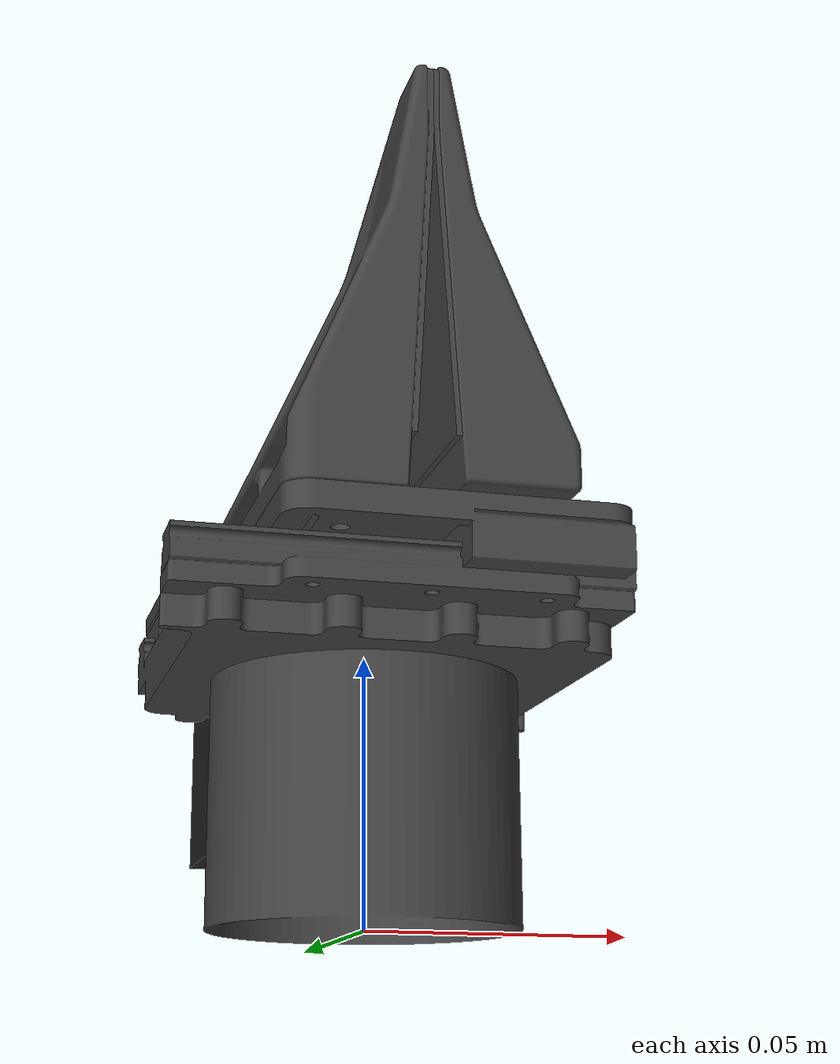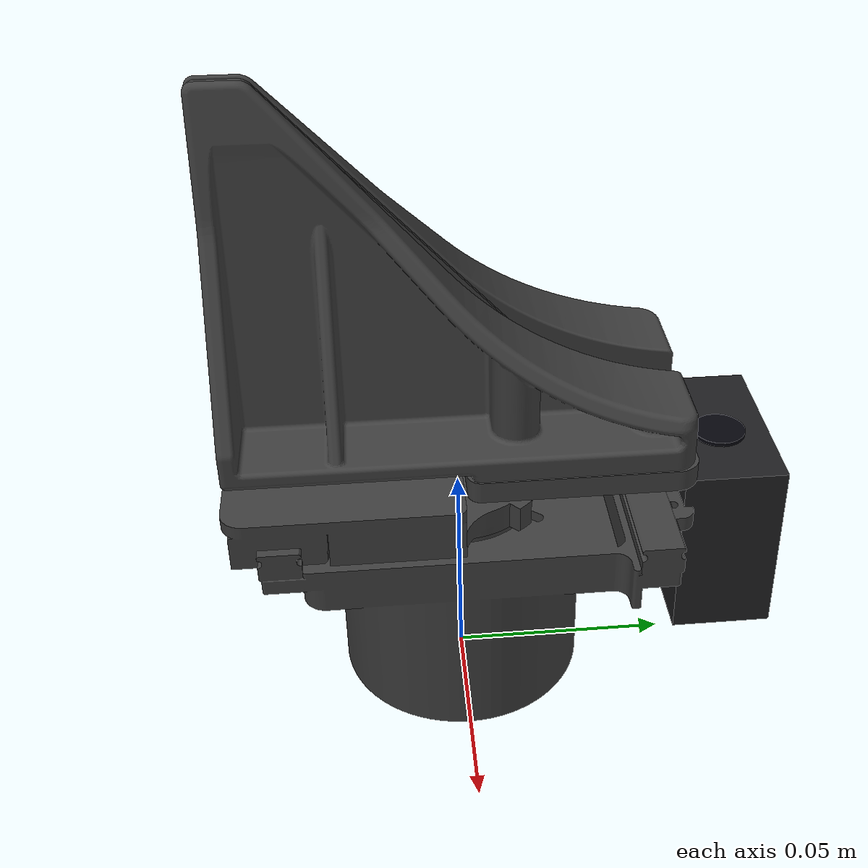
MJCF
<!-- GENERATED by scripts/build_yam_assets.py from teleop_sim/envs/yam_assets.py.
     Do not edit by hand: change the generator and re-run it. -->
<mujoco model="yam_linear">
  <compiler angle="radian" />
  <default>
    <default class="yam_linear_yam">
      <position inheritrange="1" />
      <joint frictionloss="0.1" axis="0 0 1" />
      <default class="yam_linear_dm4340">
        <joint armature="0.032" />
        <position kp="40" kv="2.5" forcerange="-28 28" />
      </default>
      <default class="yam_linear_dm4310">
        <joint armature="0.0018" />
        <position kp="10" kv="1" forcerange="-10 10" />
      </default>
      <default class="yam_linear_visual">
        <geom type="mesh" contype="0" conaffinity="0" density="0" group="2" material="yam_linear_black" />
      </default>
      <default class="yam_linear_collision">
        <geom group="3" type="capsule" />
        <default class="yam_linear_sphere_collision">
          <geom size="0.0006 0 0" type="sphere" rgba="1 0 0 1" />
        </default>
      </default>
      <default class="yam_linear_finger">
        <joint type="slide" armature="0.1" frictionloss="0.1" />
        <position ctrlrange="0.0 0.041" kp="100" kv="10" inheritrange="0" />
      </default>
    </default>
  </default>
  <asset>
    <material name="yam_linear_black" rgba="0.25 0.25 0.25 1" />
    <material name="yam_linear_white" rgba="0.9 0.9 0.9 1" />
    <mesh file="../../i2rt_yam/upstream/assets/model2__12.stl" name="yam_linear_model2__12" />
    <mesh file="../../i2rt_yam/upstream/assets/model2__14.stl" name="yam_linear_model2__14" />
    <mesh file="../../i2rt_yam/upstream/assets/model2__15.stl" name="yam_linear_model2__15" />
    <mesh file="../../i2rt_yam/upstream/assets/model2__16.stl" name="yam_linear_model2__16" />
    <mesh file="../../i2rt_yam/upstream/assets/model2__17.stl" name="yam_linear_model2__17" />
    <mesh name="yam_linear_stock_frame" file="meshes/stock_frame.stl" />
  </asset>
  <worldbody>
    <body name="yam_linear" childclass="yam_linear_yam">
      <inertial pos="0 0 0" mass="1e-6" diaginertia="1e-12 1e-12 1e-12" />
      <geom class="yam_linear_visual" pos="0 -0.164101 -0.110597" quat="1 -1 0 0" mesh="yam_linear_stock_frame" />
      <geom class="yam_linear_visual" pos="0 -0.164101 -0.110597" quat="1 -1 0 0" mesh="yam_linear_model2__12" />
      <geom class="yam_linear_collision" size="0.01 0.035" pos="0 0.039 0.052" quat="1 0 1 0" />
      <geom class="yam_linear_collision" size="0.030 0.005" pos="0 0.0 0.03" quat="1 0 0 1" />
      <geom class="yam_linear_collision" size="0.01 0.035" pos="0 -0.039 0.052" quat="1 0 1 0" />
      <site name="grasp_site" pos="0 0 0.1347" quat="1 0 0 -1" size="0.005" rgba="0 1 0 1" group="4" />
      <body name="link_left_finger" pos="-0.037 0.0392 0.0605" quat="1 0 1 0" gravcomp="1">
        <inertial pos="-0.0192995 -0.0365902 0.039774" quat="0.757351 0.568898 -0.3199 0.0" mass="0.118" diaginertia="0.000159084 0.000154909 4.63655e-05" />
        <joint class="yam_linear_finger" name="left_finger" range="-0.00205 0.037524" />
        <geom class="yam_linear_visual" pos="0.171097 -0.203301 0.037" quat="1 -1 -1 -1" mesh="yam_linear_model2__14" />
        <geom class="yam_linear_visual" pos="0.171097 -0.203301 0.037" quat="1 -1 -1 -1" mesh="yam_linear_model2__15" />
        <body name="lf_rot" quat="1 -1 -1 1" pos="0.0 -0.0392 0.037" gravcomp="1">
          <geom class="yam_linear_collision" size="0.01 0.03" pos="0.0 -0.02 0.012" quat="1 0 1 0" rgba="0.381493 0.492734 0.780446 1" />
          <geom class="yam_linear_collision" size="0.01 0.02" pos="-0.02 -0.01 0.032" quat="1 0 2.5 0" rgba="0.381493 0.492734 0.780446 1" />
          <body name="lf_down" quat="1 0 0 0" pos="-0.044 0.0 0.0" gravcomp="1">
            <geom class="yam_linear_collision" size="0.01 0.01" pos="0.0 -0.020 0.012" quat="1 -0.1 0 0" rgba="0.381493 0.492734 0.780446 1" />
            <geom class="yam_linear_collision" size="0.003 0.022" pos="0.005 -0.014 0.04" quat="1 -0.2 0 0" rgba="0.381493 0.492734 0.780446 1" />
            <geom class="yam_linear_collision" size="0.003 0.022" pos="-0.005 -0.014 0.04" quat="1 -0.2 0 0" rgba="0.381493 0.492734 0.780446 1" />
            <geom class="yam_linear_collision" type="box" size="0.006 0.002 0.04" pos="0 -0.0024 0.046" quat="1 0 0 0" rgba="0.381493 0.492734 0.780446 1" />
            <geom class="yam_linear_collision" type="box" size="0.006 0.002 0.039" pos="0.027 -0.0024 0.053" quat="1 0 2.5 0" rgba="0.381493 0.492734 0.780446 1" />
            <geom class="yam_linear_sphere_collision" pos="0.003 -0.0004 0.078" />
            <geom class="yam_linear_sphere_collision" pos="-0.003 -0.0004 0.078" />
            <geom class="yam_linear_sphere_collision" pos="0.003 -0.0004 0.07" />
            <geom class="yam_linear_sphere_collision" pos="-0.003 -0.0004 0.07" />
            <geom class="yam_linear_sphere_collision" pos="0.003 -0.0004 0.06" />
            <geom class="yam_linear_sphere_collision" pos="-0.003 -0.0004 0.06" />
          </body>
        </body>
      </body>
      <body name="link_right_finger" pos="0.037 -0.0392 0.0605" quat="1 0 1 0" gravcomp="1">
        <inertial pos="-0.0192995 0.0365902 -0.039774" quat="-0.757351 0.568898 -0.3199 0" mass="0.118" diaginertia="0.000159084 0.000154909 4.63655e-05" />
        <joint class="yam_linear_finger" name="right_finger" range="-0.037524 0.00205" />
        <geom class="yam_linear_visual" pos="0.171097 -0.124901 -0.037" quat="1 -1 -1 -1" mesh="yam_linear_model2__16" />
        <geom class="yam_linear_visual" pos="0.171097 -0.124901 -0.037" quat="1 -1 -1 -1" mesh="yam_linear_model2__17" />
        <body name="rf_rot" quat="1 1 -1 -1" pos="0.0 0.0392 -0.037" gravcomp="1">
          <geom class="yam_linear_collision" size="0.01 0.03" pos="0.0 -0.02 0.012" quat="1 0 1 0" rgba="0.381493 0.492734 0.780446 1" />
          <geom class="yam_linear_collision" size="0.01 0.02" pos="0.02 -0.01 0.032" quat="1 0 -2.5 0" rgba="0.381493 0.492734 0.780446 1" />
          <body name="rf_down" quat="1 0 0 0" pos="0.044 0.0 0.0" gravcomp="1">
            <geom class="yam_linear_collision" size="0.01 0.01" pos="0.0 -0.020 0.012" quat="1 -0.1 0 0" rgba="0.381493 0.492734 0.780446 1" />
            <geom class="yam_linear_collision" size="0.003 0.022" pos="0.005 -0.014 0.04" quat="1 -0.2 0 0" rgba="0.381493 0.492734 0.780446 1" />
            <geom class="yam_linear_collision" size="0.003 0.022" pos="-0.005 -0.014 0.04" quat="1 -0.2 0 0" rgba="0.381493 0.492734 0.780446 1" />
            <geom class="yam_linear_collision" type="box" size="0.006 0.002 0.04" pos="0 -0.0024 0.046" quat="1 0 0 0" rgba="0.381493 0.492734 0.780446 1" />
            <geom class="yam_linear_collision" type="box" size="0.006 0.002 0.039" pos="-0.027 -0.0024 0.053" quat="1 0 -2.5 0" rgba="0.381493 0.492734 0.780446 1" />
            <geom class="yam_linear_sphere_collision" pos="0.003 -0.0004 0.078" />
            <geom class="yam_linear_sphere_collision" pos="-0.003 -0.0004 0.078" />
            <geom class="yam_linear_sphere_collision" pos="0.003 -0.0004 0.07" />
            <geom class="yam_linear_sphere_collision" pos="-0.003 -0.0004 0.07" />
            <geom class="yam_linear_sphere_collision" pos="0.003 -0.0004 0.06" />
            <geom class="yam_linear_sphere_collision" pos="-0.003 -0.0004 0.06" />
          </body>
        </body>
      </body>
      <body name="wrist_d405" pos="0 0.06 0.04" gravcomp="1">
        <inertial pos="0 0 0" mass="0.06" diaginertia="1.5e-05 1e-05 1e-05" />
        <geom name="wrist_d405_visual" type="box" size="0.021 0.0115 0.021" contype="0" conaffinity="0" group="2" rgba="0.12 0.12 0.13 1" />
        <geom name="wrist_d405_lens" type="cylinder" size="0.006 0.001" pos="0.003 0 0.021" contype="0" conaffinity="0" group="2" rgba="0.02 0.02 0.05 1" />
        <geom name="wrist_d405_collision" type="box" size="0.021 0.0115 0.021" group="3" mass="0" />
        <camera name="wrist" pos="0.003 0 0.022" xyaxes="-0.999614 0.000000 -0.027767 -0.013481 0.874237 0.485313" fovy="58" />
      </body>
    </body>
  </worldbody>
  <equality>
    <joint joint1="left_finger" joint2="right_finger" polycoef="0 -1 0 0 0" />
  </equality>
  <actuator>
    <position class="yam_linear_finger" name="gripper" joint="left_finger" />
  </actuator>
</mujoco>
